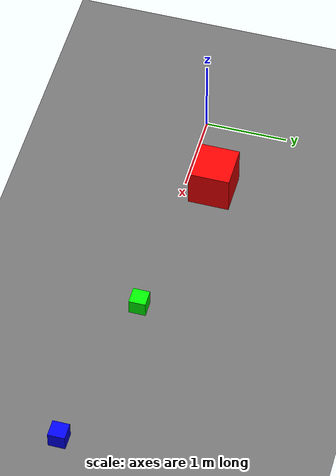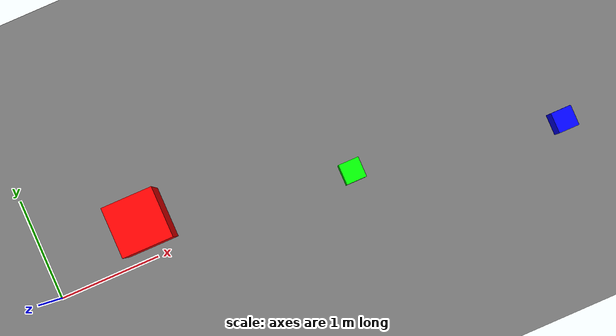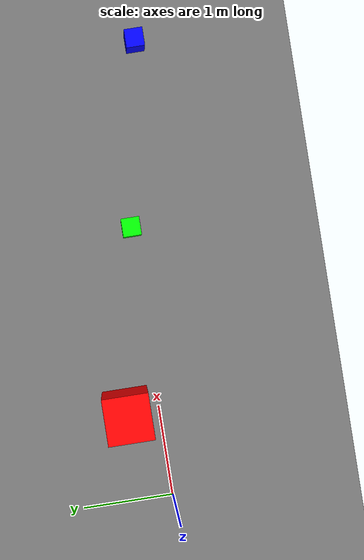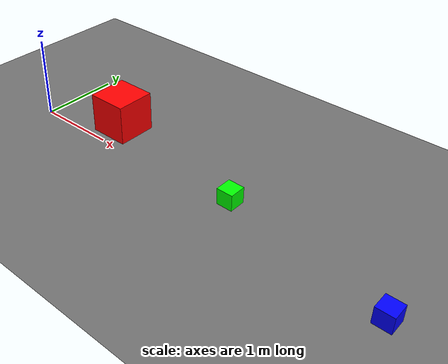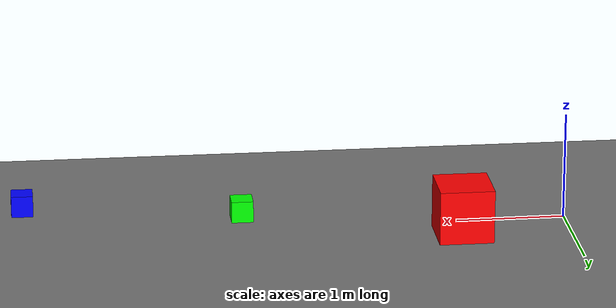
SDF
<?xml version="1.0" ?>
<sdf version="1.6">
  <world name="c1_single_cube">
    <scene>
      <ambient>0.7 0.7 0.7 1</ambient>
      <background>0.5 0.5 0.5 1</background>
    </scene>

    <include>
      <uri>model://sun</uri>
    </include>

    <model name="ground_plane_c1">
      <static>true</static>
      <link name="link">
        <collision name="collision">
          <geometry>
            <plane>
              <normal>0 0 1</normal>
              <size>30 30</size>
            </plane>
          </geometry>
        </collision>
        <visual name="visual">
          <geometry>
            <plane>
              <normal>0 0 1</normal>
              <size>30 30</size>
            </plane>
          </geometry>
          <material>
            <ambient>0.45 0.45 0.45 1</ambient>
            <diffuse>0.45 0.45 0.45 1</diffuse>
          </material>
        </visual>
      </link>
    </model>

    <model name="test_cube">
      <!-- Базовая позиция; тест перед кадром выставляет X=1/3/5 -->
      <pose>1.0 0.35 0.25 0 0 0</pose>
      <static>false</static>
      <link name="link">
        <gravity>false</gravity>
        <collision name="collision">
          <geometry>
            <box><size>0.5 0.5 0.5</size></box>
          </geometry>
        </collision>
        <visual name="visual">
          <geometry>
            <box><size>0.5 0.5 0.5</size></box>
          </geometry>
          <material>
            <ambient>1 0 0 1</ambient>
            <diffuse>1 0 0 1</diffuse>
          </material>
        </visual>
      </link>
    </model>

    <model name="c1_mid_marker">
      <pose>3.0 0.0 0.20 0 0 0</pose>
      <static>true</static>
      <link name="link">
        <collision name="collision">
          <geometry>
            <box><size>0.20 0.20 0.20</size></box>
          </geometry>
        </collision>
        <visual name="visual">
          <geometry>
            <box><size>0.20 0.20 0.20</size></box>
          </geometry>
          <material>
            <ambient>0 1 0 1</ambient>
            <diffuse>0 1 0 1</diffuse>
          </material>
        </visual>
      </link>
    </model>

    <model name="c1_far_marker">
      <pose>5.0 -0.35 0.20 0 0 0</pose>
      <static>true</static>
      <link name="link">
        <collision name="collision">
          <geometry>
            <box><size>0.20 0.20 0.20</size></box>
          </geometry>
        </collision>
        <visual name="visual">
          <geometry>
            <box><size>0.20 0.20 0.20</size></box>
          </geometry>
          <material>
            <ambient>0 0 1 1</ambient>
            <diffuse>0 0 1 1</diffuse>
          </material>
        </visual>
      </link>
    </model>
  </world>
</sdf>
